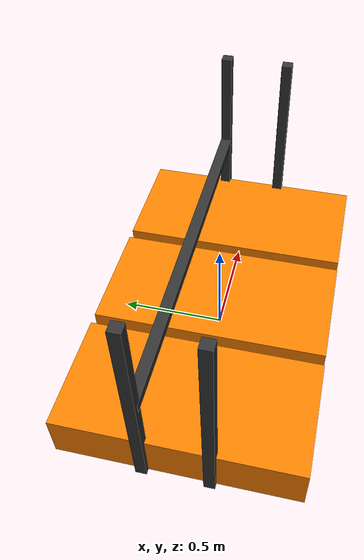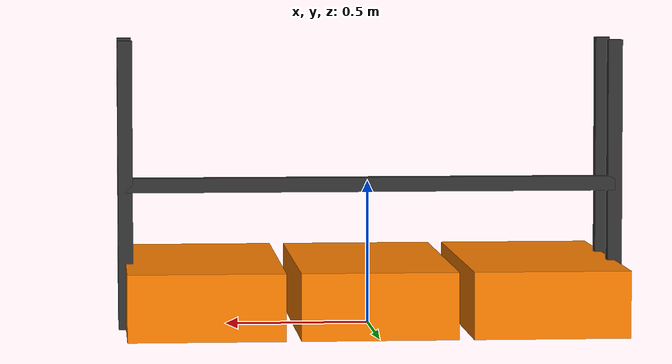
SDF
<?xml version="1.0" ?>
<sdf version="1.6">
  <model name="cupboard">
    <static>true</static>

    <link name="cupboard_link">

      <!-- Inertial (minimal since static) -->
      <inertial>
        <mass>1.0</mass>
        <inertia>
          <ixx>0.1</ixx>
          <iyy>0.1</iyy>
          <izz>0.1</izz>
        </inertia>
      </inertial>

      <!-- FRAME: four vertical posts -->
      <!-- New width: 3×0.535 + 2×0.05 gap = 1.705 m total → half-width = 0.8525 -->
      <!-- Corner posts at x = ±0.8525, y = ±0.15, height = 1.0 (z=0.5) -->

      <!-- Front-left post -->
      <visual name="post_fl_vis">
        <pose>-0.8525  0.15 0.5  0 0 0</pose>
        <geometry><box><size>0.05 0.05 1.0</size></box></geometry>
        <material><ambient>0.2 0.2 0.2 1</ambient><diffuse>0.2 0.2 0.2 1</diffuse></material>
      </visual>
      <collision name="post_fl_col">
        <pose>-0.8525  0.15 0.5  0 0 0</pose>
        <geometry><box><size>0.05 0.05 1.0</size></box></geometry>
      </collision>

      <!-- Front-right post -->
      <visual name="post_fr_vis">
        <pose> 0.8525  0.15 0.5  0 0 0</pose>
        <geometry><box><size>0.05 0.05 1.0</size></box></geometry>
        <material><ambient>0.2 0.2 0.2 1</ambient><diffuse>0.2 0.2 0.2 1</diffuse></material>
      </visual>
      <collision name="post_fr_col">
        <pose> 0.8525  0.15 0.5  0 0 0</pose>
        <geometry><box><size>0.05 0.05 1.0</size></box></geometry>
      </collision>

      <!-- Back-left post -->
      <visual name="post_bl_vis">
        <pose>-0.8525 -0.15 0.5  0 0 0</pose>
        <geometry><box><size>0.05 0.05 1.0</size></box></geometry>
        <material><ambient>0.2 0.2 0.2 1</ambient><diffuse>0.2 0.2 0.2 1</diffuse></material>
      </visual>
      <collision name="post_bl_col">
        <pose>-0.8525 -0.15 0.5  0 0 0</pose>
        <geometry><box><size>0.05 0.05 1.0</size></box></geometry>
      </collision>

      <!-- Back-right post -->
      <visual name="post_br_vis">
        <pose> 0.8525 -0.15 0.5  0 0 0</pose>
        <geometry><box><size>0.05 0.05 1.0</size></box></geometry>
        <material><ambient>0.2 0.2 0.2 1</ambient><diffuse>0.2 0.2 0.2 1</diffuse></material>
      </visual>
      <collision name="post_br_col">
        <pose> 0.8525 -0.15 0.5  0 0 0</pose>
        <geometry><box><size>0.05 0.05 1.0</size></box></geometry>
      </collision>

      <!-- Front horizontal rail at mid-height -->
      <visual name="rail_front_vis">
        <pose>0 0.15 0.5 0 0 0</pose>
        <geometry><box><size>1.705 0.05 0.05</size></box></geometry>
        <material><ambient>0.2 0.2 0.2 1</ambient><diffuse>0.2 0.2 0.2 1</diffuse></material>
      </visual>
      <collision name="rail_front_col">
        <pose>0 0.15 0.5 0 0 0</pose>
        <geometry><box><size>1.705 0.05 0.05</size></box></geometry>
      </collision>

      <!-- Three orange boxes, size 0.535×1.100×0.230 (W×D×H), gap 0.05m -->
      <!-- X positions: −(0.535+0.05)=−0.585, 0, +0.585; Z=0.115 (half height) -->

      <!-- Left box -->
      <visual name="box_left_vis">
        <pose>-0.585  0.00 0.115  0 0 0</pose>
        <geometry><box><size>0.535 1.100 0.230</size></box></geometry>
        <material><ambient>1 0.5 0 1</ambient><diffuse>1 0.5 0 1</diffuse></material>
      </visual>
      <collision name="box_left_col">
        <pose>-0.585  0.00 0.115  0 0 0</pose>
        <geometry><box><size>0.535 1.100 0.230</size></box></geometry>
      </collision>

      <!-- Center box -->
      <visual name="box_center_vis">
        <pose> 0.000  0.00 0.115  0 0 0</pose>
        <geometry><box><size>0.535 1.100 0.230</size></box></geometry>
        <material><ambient>1 0.5 0 1</ambient><diffuse>1 0.5 0 1</diffuse></material>
      </visual>
      <collision name="box_center_col">
        <pose> 0.000  0.00 0.115  0 0 0</pose>
        <geometry><box><size>0.535 1.100 0.230</size></box></geometry>
      </collision>

      <!-- Right box -->
      <visual name="box_right_vis">
        <pose> 0.585  0.00 0.115  0 0 0</pose>
        <geometry><box><size>0.535 1.100 0.230</size></box></geometry>
        <material><ambient>1 0.5 0 1</ambient><diffuse>1 0.5 0 1</diffuse></material>
      </visual>
      <collision name="box_right_col">
        <pose> 0.585  0.00 0.115  0 0 0</pose>
        <geometry><box><size>0.535 1.100 0.230</size></box></geometry>
      </collision>

    </link>
  </model>
</sdf>
